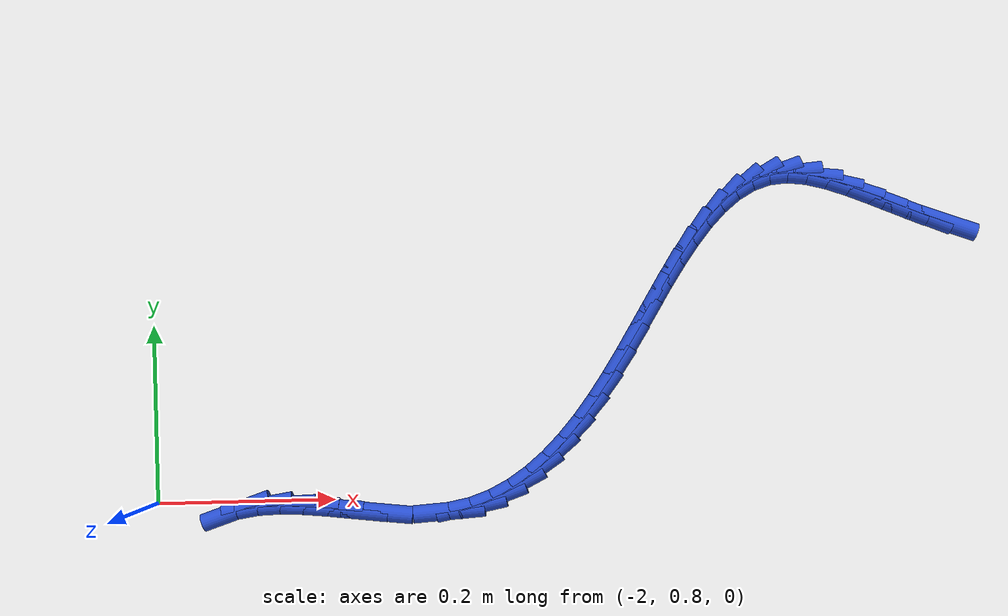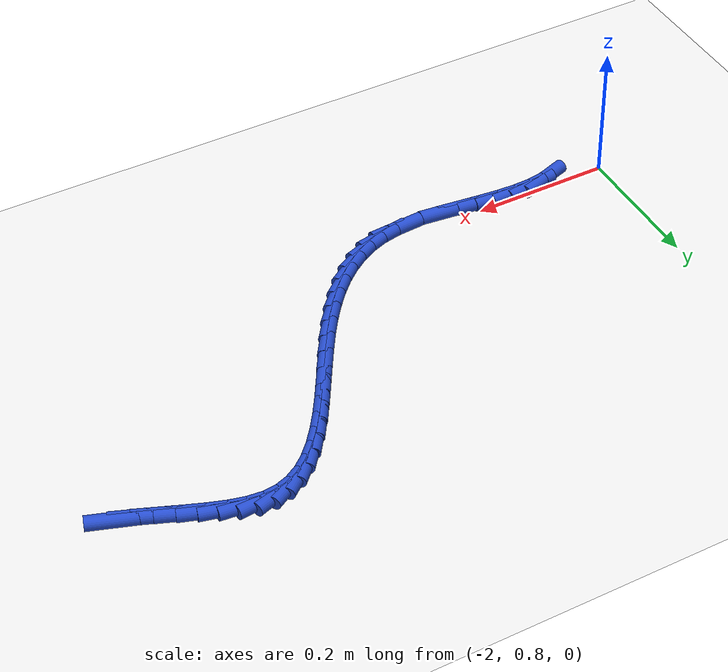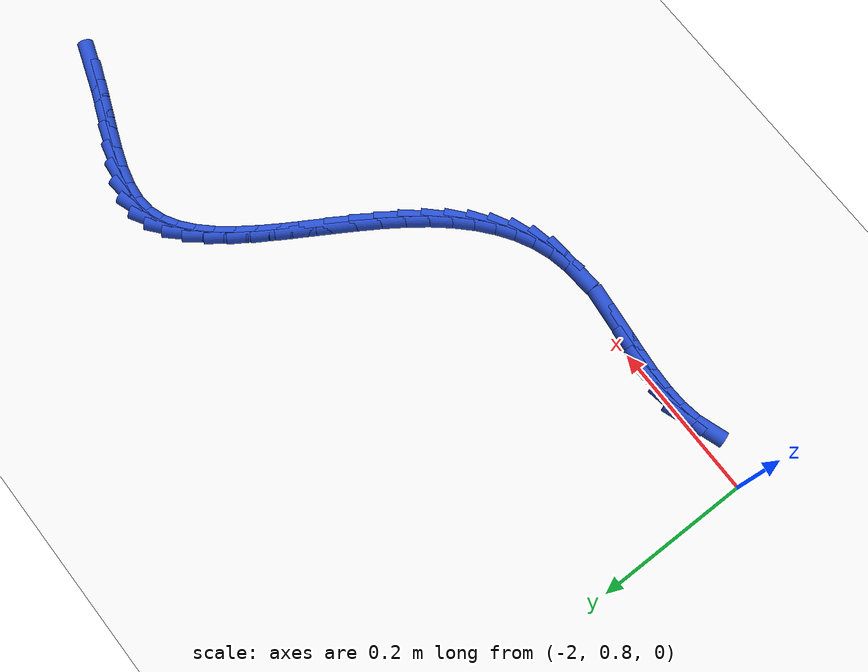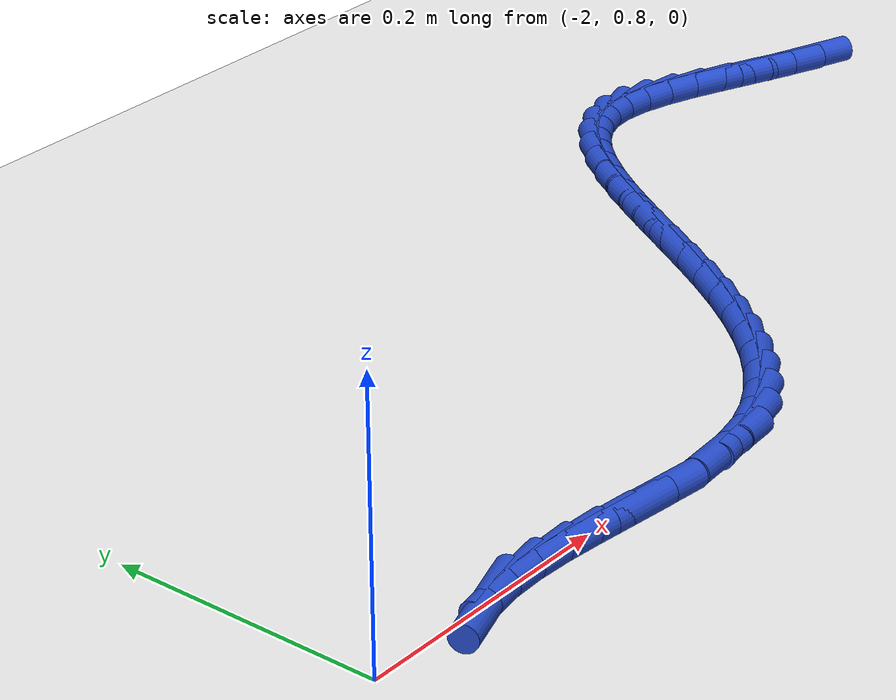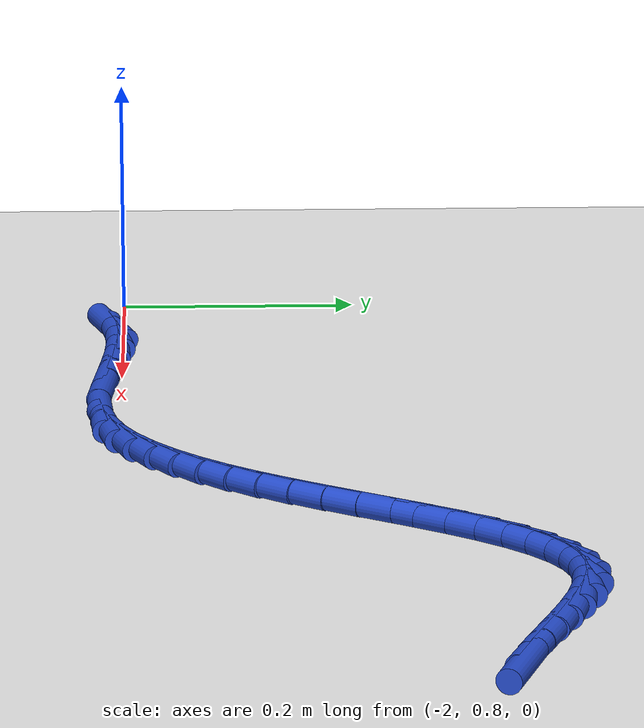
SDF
<sdf version="1.6">
 <world name="default">
  <model name="ground_plane">
   <static>1</static>
   <link name="link">
    <collision name="collision">
     <geometry><plane><normal>0 0 1</normal><size>100 100</size></plane></geometry>
     <surface><friction><ode><mu>100</mu><mu2>50</mu2></ode></friction></surface>
    </collision>
    <visual name="visual">
     <cast_shadows>0</cast_shadows>
     <geometry><plane><normal>0 0 1</normal><size>100 100</size></plane></geometry>
     <material>
      <script><uri>file://media/materials/scripts/gazebo.material</uri><name>Gazebo/WhiteGlow</name></script>
     </material>
    </visual>
   </link>
  </model>
  <model name="line">
   <link name="link_69">
    <pose>-1.1131024533649603 1.0959310252053325 0.01 0 1.57 -0.34224551649813695</pose>
    <collision name="collision">
     <geometry><cylinder><radius>0.01</radius><length>0.08</length></cylinder></geometry>
    </collision>
    <visual name="visual">
     <material>
      <script><name>Gazebo/Blue</name><uri>file://media/materials/scripts/gazebo.material</uri></script>
     </material>
     <geometry><cylinder><radius>0.01</radius><length>0.08</length></cylinder></geometry>
    </visual>
   </link>
   <link name="link_70">
    <pose>-1.139804176223016 1.1054439248655348 0.01 0 1.57 -0.38161679508487856</pose>
    <collision name="collision">
     <geometry><cylinder><radius>0.01</radius><length>0.08</length></cylinder></geometry>
    </collision>
    <visual name="visual">
     <material>
      <script><name>Gazebo/Blue</name><uri>file://media/materials/scripts/gazebo.material</uri></script>
     </material>
     <geometry><cylinder><radius>0.01</radius><length>0.08</length></cylinder></geometry>
    </visual>
   </link>
   <link name="link_71">
    <pose>-1.1660535421144216 1.1159774976710761 0.01 0 1.57 -0.39383830226272526</pose>
    <collision name="collision">
     <geometry><cylinder><radius>0.01</radius><length>0.08</length></cylinder></geometry>
    </collision>
    <visual name="visual">
     <material>
      <script><name>Gazebo/Blue</name><uri>file://media/materials/scripts/gazebo.material</uri></script>
     </material>
     <geometry><cylinder><radius>0.01</radius><length>0.08</length></cylinder></geometry>
    </visual>
   </link>
   <link name="link_72">
    <pose>-1.1917189461984745 1.126642727412515 0.01 0 1.57 -0.3780139206703971</pose>
    <collision name="collision">
     <geometry><cylinder><radius>0.01</radius><length>0.08</length></cylinder></geometry>
    </collision>
    <visual name="visual">
     <material>
      <script><name>Gazebo/Blue</name><uri>file://media/materials/scripts/gazebo.material</uri></script>
     </material>
     <geometry><cylinder><radius>0.01</radius><length>0.08</length></cylinder></geometry>
    </visual>
   </link>
   <link name="link_73">
    <pose>-1.216668783634475 1.1365505978804125 0.01 0 1.57 -0.3302128483541288</pose>
    <collision name="collision">
     <geometry><cylinder><radius>0.01</radius><length>0.08</length></cylinder></geometry>
    </collision>
    <visual name="visual">
     <material>
      <script><name>Gazebo/Blue</name><uri>file://media/materials/scripts/gazebo.material</uri></script>
     </material>
     <geometry><cylinder><radius>0.01</radius><length>0.08</length></cylinder></geometry>
    </visual>
   </link>
   <link name="link_74">
    <pose>-1.2407714495817184 1.144812092865326 0.01 0 1.57 -0.242744165373473</pose>
    <collision name="collision">
     <geometry><cylinder><radius>0.01</radius><length>0.08</length></cylinder></geometry>
    </collision>
    <visual name="visual">
     <material>
      <script><name>Gazebo/Blue</name><uri>file://media/materials/scripts/gazebo.material</uri></script>
     </material>
     <geometry><cylinder><radius>0.01</radius><length>0.08</length></cylinder></geometry>
    </visual>
   </link>
   <link name="link_75">
    <pose>-1.2638953391995043 1.150538196157816 0.01 0 1.57 -0.1041797708972424</pose>
    <collision name="collision">
     <geometry><cylinder><radius>0.01</radius><length>0.08</length></cylinder></geometry>
    </collision>
    <visual name="visual">
     <material>
      <script><name>Gazebo/Blue</name><uri>file://media/materials/scripts/gazebo.material</uri></script>
     </material>
     <geometry><cylinder><radius>0.01</radius><length>0.08</length></cylinder></geometry>
    </visual>
   </link>
   <link name="link_76">
    <pose>-1.2859088476471296 1.152839891548441 0.01 0 1.57 0.09610725460917056</pose>
    <collision name="collision">
     <geometry><cylinder><radius>0.01</radius><length>0.08</length></cylinder></geometry>
    </collision>
    <visual name="visual">
     <material>
      <script><name>Gazebo/Blue</name><uri>file://media/materials/scripts/gazebo.material</uri></script>
     </material>
     <geometry><cylinder><radius>0.01</radius><length>0.08</length></cylinder></geometry>
    </visual>
   </link>
   <link name="link_77">
    <pose>-1.306682312413387 1.1508372411845162 0.01 0 1.57 0.32896347673873627</pose>
    <collision name="collision">
     <geometry><cylinder><radius>0.01</radius><length>0.08</length></cylinder></geometry>
    </collision>
    <visual name="visual">
     <material>
      <script><name>Gazebo/Blue</name><uri>file://media/materials/scripts/gazebo.material</uri></script>
     </material>
     <geometry><cylinder><radius>0.01</radius><length>0.08</length></cylinder></geometry>
    </visual>
   </link>
   <link name="link_78">
    <pose>-1.3261983526077918 1.1441751062309726 0.01 0 1.57 0.5334759758551566</pose>
    <collision name="collision">
     <geometry><cylinder><radius>0.01</radius><length>0.08</length></cylinder></geometry>
    </collision>
    <visual name="visual">
     <material>
      <script><name>Gazebo/Blue</name><uri>file://media/materials/scripts/gazebo.material</uri></script>
     </material>
     <geometry><cylinder><radius>0.01</radius><length>0.08</length></cylinder></geometry>
    </visual>
   </link>
   <link name="link_79">
    <pose>-1.3446112185961154 1.1333005442771846 0.01 0 1.57 0.6949700475039674</pose>
    <collision name="collision">
     <geometry><cylinder><radius>0.01</radius><length>0.08</length></cylinder></geometry>
    </collision>
    <visual name="visual">
     <material>
      <script><name>Gazebo/Blue</name><uri>file://media/materials/scripts/gazebo.material</uri></script>
     </material>
     <geometry><cylinder><radius>0.01</radius><length>0.08</length></cylinder></geometry>
    </visual>
   </link>
   <link name="link_80">
    <pose>-1.3620896471388695 1.1187283216406259 0.01 0 1.57 0.8156313135336554</pose>
    <collision name="collision">
     <geometry><cylinder><radius>0.01</radius><length>0.08</length></cylinder></geometry>
    </collision>
    <visual name="visual">
     <material>
      <script><name>Gazebo/Blue</name><uri>file://media/materials/scripts/gazebo.material</uri></script>
     </material>
     <geometry><cylinder><radius>0.01</radius><length>0.08</length></cylinder></geometry>
    </visual>
   </link>
   <link name="link_81">
    <pose>-1.3788023749965659 1.10097320463877 0.01 0 1.57 0.9027437548934093</pose>
    <collision name="collision">
     <geometry><cylinder><radius>0.01</radius><length>0.08</length></cylinder></geometry>
    </collision>
    <visual name="visual">
     <material>
      <script><name>Gazebo/Blue</name><uri>file://media/materials/scripts/gazebo.material</uri></script>
     </material>
     <geometry><cylinder><radius>0.01</radius><length>0.08</length></cylinder></geometry>
    </visual>
   </link>
   <link name="link_82">
    <pose>-1.3949181389297163 1.080549959589091 0.01 0 1.57 0.9635296841840085</pose>
    <collision name="collision">
     <geometry><cylinder><radius>0.01</radius><length>0.08</length></cylinder></geometry>
    </collision>
    <visual name="visual">
     <material>
      <script><name>Gazebo/Blue</name><uri>file://media/materials/scripts/gazebo.material</uri></script>
     </material>
     <geometry><cylinder><radius>0.01</radius><length>0.08</length></cylinder></geometry>
    </visual>
   </link>
   <link name="link_83">
    <pose>-1.4106056756988328 1.0579733528090647 0.01 0 1.57 1.0035272739901535</pose>
    <collision name="collision">
     <geometry><cylinder><radius>0.01</radius><length>0.08</length></cylinder></geometry>
    </collision>
    <visual name="visual">
     <material>
      <script><name>Gazebo/Blue</name><uri>file://media/materials/scripts/gazebo.material</uri></script>
     </material>
     <geometry><cylinder><radius>0.01</radius><length>0.08</length></cylinder></geometry>
    </visual>
   </link>
   <link name="link_84">
    <pose>-1.4260337220644261 1.0337581506161635 0.01 0 1.57 1.0265010932751242</pose>
    <collision name="collision">
     <geometry><cylinder><radius>0.01</radius><length>0.08</length></cylinder></geometry>
    </collision>
    <visual name="visual">
     <material>
      <script><name>Gazebo/Blue</name><uri>file://media/materials/scripts/gazebo.material</uri></script>
     </material>
     <geometry><cylinder><radius>0.01</radius><length>0.08</length></cylinder></geometry>
    </visual>
   </link>
   <link name="link_85">
    <pose>-1.4413710147870087 1.0084191193278627 0.01 0 1.57 1.0347402237558159</pose>
    <collision name="collision">
     <geometry><cylinder><radius>0.01</radius><length>0.08</length></cylinder></geometry>
    </collision>
    <visual name="visual">
     <material>
      <script><name>Gazebo/Blue</name><uri>file://media/materials/scripts/gazebo.material</uri></script>
     </material>
     <geometry><cylinder><radius>0.01</radius><length>0.08</length></cylinder></geometry>
    </visual>
   </link>
   <link name="link_86">
    <pose>-1.4567862906270925 0.9824710252616355 0.01 0 1.57 1.0293451726246854</pose>
    <collision name="collision">
     <geometry><cylinder><radius>0.01</radius><length>0.08</length></cylinder></geometry>
    </collision>
    <visual name="visual">
     <material>
      <script><name>Gazebo/Blue</name><uri>file://media/materials/scripts/gazebo.material</uri></script>
     </material>
     <geometry><cylinder><radius>0.01</radius><length>0.08</length></cylinder></geometry>
    </visual>
   </link>
   <link name="link_87">
    <pose>-1.4724482863451887 0.9564286347349561 0.01 0 1.57 1.0104097593267476</pose>
    <collision name="collision">
     <geometry><cylinder><radius>0.01</radius><length>0.08</length></cylinder></geometry>
    </collision>
    <visual name="visual">
     <material>
      <script><name>Gazebo/Blue</name><uri>file://media/materials/scripts/gazebo.material</uri></script>
     </material>
     <geometry><cylinder><radius>0.01</radius><length>0.08</length></cylinder></geometry>
    </visual>
   </link>
   <link name="link_88">
    <pose>-1.4885257387018087 0.9308067140652994 0.01 0 1.57 0.9770985973906198</pose>
    <collision name="collision">
     <geometry><cylinder><radius>0.01</radius><length>0.08</length></cylinder></geometry>
    </collision>
    <visual name="visual">
     <material>
      <script><name>Gazebo/Blue</name><uri>file://media/materials/scripts/gazebo.material</uri></script>
     </material>
     <geometry><cylinder><radius>0.01</radius><length>0.08</length></cylinder></geometry>
    </visual>
   </link>
   <link name="link_89">
    <pose>-1.5051873844574648 0.9061200295701389 0.01 0 1.57 0.9285931761300371</pose>
    <collision name="collision">
     <geometry><cylinder><radius>0.01</radius><length>0.08</length></cylinder></geometry>
    </collision>
    <visual name="visual">
     <material>
      <script><name>Gazebo/Blue</name><uri>file://media/materials/scripts/gazebo.material</uri></script>
     </material>
     <geometry><cylinder><radius>0.01</radius><length>0.08</length></cylinder></geometry>
    </visual>
   </link>
   <link name="link_90">
    <pose>-1.5225901493694949 0.8828534895990602 0.01 0 1.57 0.8675562680609067</pose>
    <collision name="collision">
     <geometry><cylinder><radius>0.01</radius><length>0.08</length></cylinder></geometry>
    </collision>
    <visual name="visual">
     <material>
      <script><name>Gazebo/Blue</name><uri>file://media/materials/scripts/gazebo.material</uri></script>
     </material>
     <geometry><cylinder><radius>0.01</radius><length>0.08</length></cylinder></geometry>
    </visual>
   </link>
   <link name="link_91">
    <pose>-1.540830628852636 0.8613394886630191 0.01 0 1.57 0.793734327743835</pose>
    <collision name="collision">
     <geometry><cylinder><radius>0.01</radius><length>0.08</length></cylinder></geometry>
    </collision>
    <visual name="visual">
     <material>
      <script><name>Gazebo/Blue</name><uri>file://media/materials/scripts/gazebo.material</uri></script>
     </material>
     <geometry><cylinder><radius>0.01</radius><length>0.08</length></cylinder></geometry>
    </visual>
   </link>
   <link name="link_92">
    <pose>-1.5599862055209726 0.8418618517165609 0.01 0 1.57 0.7054046833538778</pose>
    <collision name="collision">
     <geometry><cylinder><radius>0.01</radius><length>0.08</length></cylinder></geometry>
    </collision>
    <visual name="visual">
     <material>
      <script><name>Gazebo/Blue</name><uri>file://media/materials/scripts/gazebo.material</uri></script>
     </material>
     <geometry><cylinder><radius>0.01</radius><length>0.08</length></cylinder></geometry>
    </visual>
   </link>
   <link name="link_93">
    <pose>-1.5801342538379344 0.8247043831095431 0.01 0 1.57 0.6012046176604026</pose>
    <collision name="collision">
     <geometry><cylinder><radius>0.01</radius><length>0.08</length></cylinder></geometry>
    </collision>
    <visual name="visual">
     <material>
      <script><name>Gazebo/Blue</name><uri>file://media/materials/scripts/gazebo.material</uri></script>
     </material>
     <geometry><cylinder><radius>0.01</radius><length>0.08</length></cylinder></geometry>
    </visual>
   </link>
   <link name="link_94">
    <pose>-1.6013521482669495 0.8101508871918229 0.01 0 1.57 0.48078054530533654</pose>
    <collision name="collision">
     <geometry><cylinder><radius>0.01</radius><length>0.08</length></cylinder></geometry>
    </collision>
    <visual name="visual">
     <material>
      <script><name>Gazebo/Blue</name><uri>file://media/materials/scripts/gazebo.material</uri></script>
     </material>
     <geometry><cylinder><radius>0.01</radius><length>0.08</length></cylinder></geometry>
    </visual>
   </link>
   <link name="link_95">
    <pose>-1.6237172632714476 0.7984851683132581 0.01 0 1.57 0.34562470027552333</pose>
    <collision name="collision">
     <geometry><cylinder><radius>0.01</radius><length>0.08</length></cylinder></geometry>
    </collision>
    <visual name="visual">
     <material>
      <script><name>Gazebo/Blue</name><uri>file://media/materials/scripts/gazebo.material</uri></script>
     </material>
     <geometry><cylinder><radius>0.01</radius><length>0.08</length></cylinder></geometry>
    </visual>
   </link>
   <link name="link_96">
    <pose>-1.6473069733148573 0.7899910308237067 0.01 0 1.57 0.20083400818544592</pose>
    <collision name="collision">
     <geometry><cylinder><radius>0.01</radius><length>0.08</length></cylinder></geometry>
    </collision>
    <visual name="visual">
     <material>
      <script><name>Gazebo/Blue</name><uri>file://media/materials/scripts/gazebo.material</uri></script>
     </material>
     <geometry><cylinder><radius>0.01</radius><length>0.08</length></cylinder></geometry>
    </visual>
   </link>
   <link name="link_97">
    <pose>-1.6721885304982798 0.7849256816989896 0.01 0 1.57 0.07292160984890891</pose>
    <collision name="collision">
     <geometry><cylinder><radius>0.01</radius><length>0.08</length></cylinder></geometry>
    </collision>
    <visual name="visual">
     <material>
      <script><name>Gazebo/Blue</name><uri>file://media/materials/scripts/gazebo.material</uri></script>
     </material>
     <geometry><cylinder><radius>0.01</radius><length>0.08</length></cylinder></geometry>
    </visual>
   </link>
   <link name="link_100">
    <pose>-1.7525319563732187 0.7857146587472702 0.01 0 1.57 -0.11073250463598955</pose>
    <collision name="collision">
     <geometry><cylinder><radius>0.01</radius><length>0.08</length></cylinder></geometry>
    </collision>
    <visual name="visual">
     <material>
      <script><name>Gazebo/Blue</name><uri>file://media/materials/scripts/gazebo.material</uri></script>
     </material>
     <geometry><cylinder><radius>0.01</radius><length>0.08</length></cylinder></geometry>
    </visual>
   </link>
   <link name="link_101">
    <pose>-1.780151356056459 0.7887855859061109 0.01 0 1.57 -0.11603557927713727</pose>
    <collision name="collision">
     <geometry><cylinder><radius>0.01</radius><length>0.08</length></cylinder></geometry>
    </collision>
    <visual name="visual">
     <material>
      <script><name>Gazebo/Blue</name><uri>file://media/materials/scripts/gazebo.material</uri></script>
     </material>
     <geometry><cylinder><radius>0.01</radius><length>0.08</length></cylinder></geometry>
    </visual>
   </link>
   <link name="link_102">
    <pose>-1.8076558769769473 0.7919914902274909 0.01 0 1.57 -0.0950053295132512</pose>
    <collision name="collision">
     <geometry><cylinder><radius>0.01</radius><length>0.08</length></cylinder></geometry>
    </collision>
    <visual name="visual">
     <material>
      <script><name>Gazebo/Blue</name><uri>file://media/materials/scripts/gazebo.material</uri></script>
     </material>
     <geometry><cylinder><radius>0.01</radius><length>0.08</length></cylinder></geometry>
    </visual>
   </link>
   <link name="link_103">
    <pose>-1.8347251145595536 0.7945709775661102 0.01 0 1.57 -0.04525662756593205</pose>
    <collision name="collision">
     <geometry><cylinder><radius>0.01</radius><length>0.08</length></cylinder></geometry>
    </collision>
    <visual name="visual">
     <material>
      <script><name>Gazebo/Blue</name><uri>file://media/materials/scripts/gazebo.material</uri></script>
     </material>
     <geometry><cylinder><radius>0.01</radius><length>0.08</length></cylinder></geometry>
    </visual>
   </link>
   <link name="link_104">
    <pose>-1.861038664229148 0.7957626537766677 0.01 0 1.57 0.0379226003972951</pose>
    <collision name="collision">
     <geometry><cylinder><radius>0.01</radius><length>0.08</length></cylinder></geometry>
    </collision>
    <visual name="visual">
     <material>
      <script><name>Gazebo/Blue</name><uri>file://media/materials/scripts/gazebo.material</uri></script>
     </material>
     <geometry><cylinder><radius>0.01</radius><length>0.08</length></cylinder></geometry>
    </visual>
   </link>
   <link name="link_105">
    <pose>-1.886276121410601 0.7948051247138632 0.01 0 1.57 0.16084557625214807</pose>
    <collision name="collision">
     <geometry><cylinder><radius>0.01</radius><length>0.08</length></cylinder></geometry>
    </collision>
    <visual name="visual">
     <material>
      <script><name>Gazebo/Blue</name><uri>file://media/materials/scripts/gazebo.material</uri></script>
     </material>
     <geometry><cylinder><radius>0.01</radius><length>0.08</length></cylinder></geometry>
    </visual>
   </link>
   <link name="link_106">
    <pose>-1.9101170815287831 0.7909369962323962 0.01 0 1.57 0.3284637188570264</pose>
    <collision name="collision">
     <geometry><cylinder><radius>0.01</radius><length>0.08</length></cylinder></geometry>
    </collision>
    <visual name="visual">
     <material>
      <script><name>Gazebo/Blue</name><uri>file://media/materials/scripts/gazebo.material</uri></script>
     </material>
     <geometry><cylinder><radius>0.01</radius><length>0.08</length></cylinder></geometry>
    </visual>
   </link>
  </model>
 </world>
</sdf>
